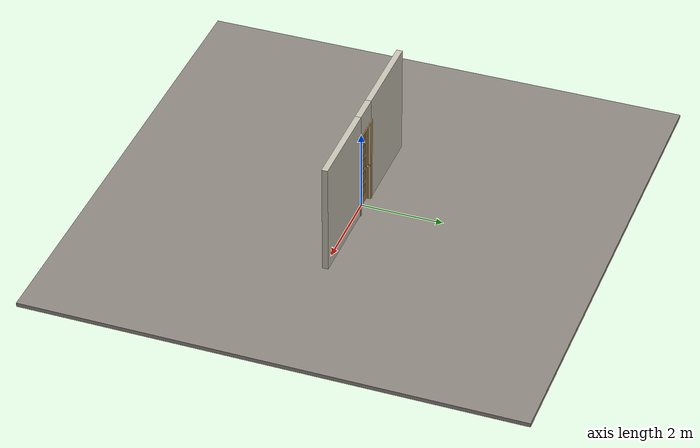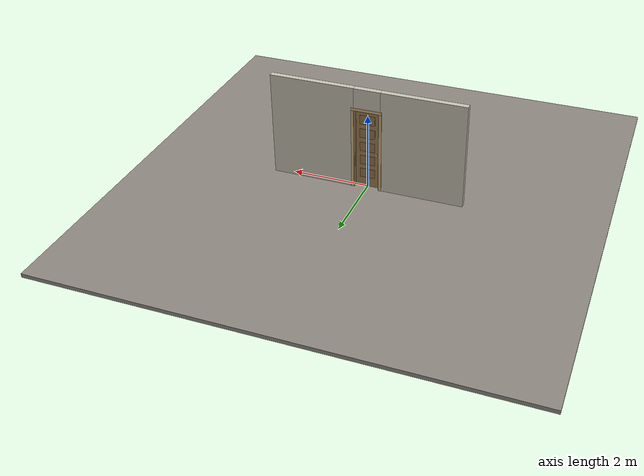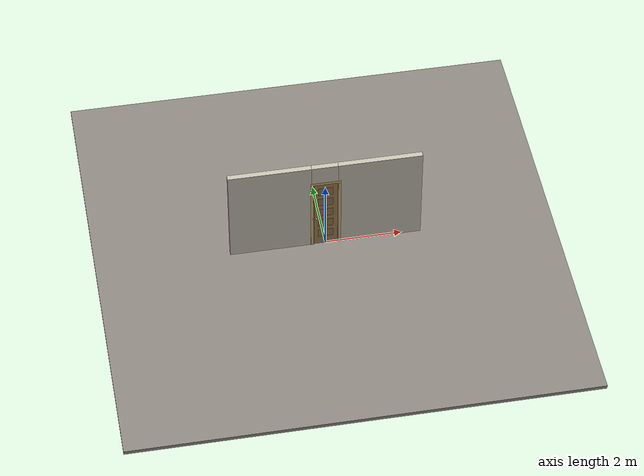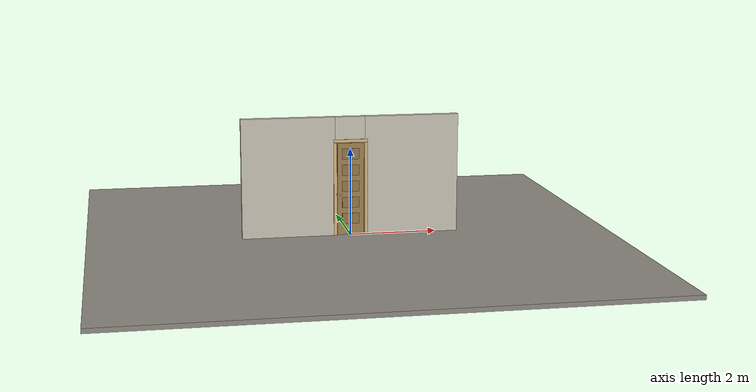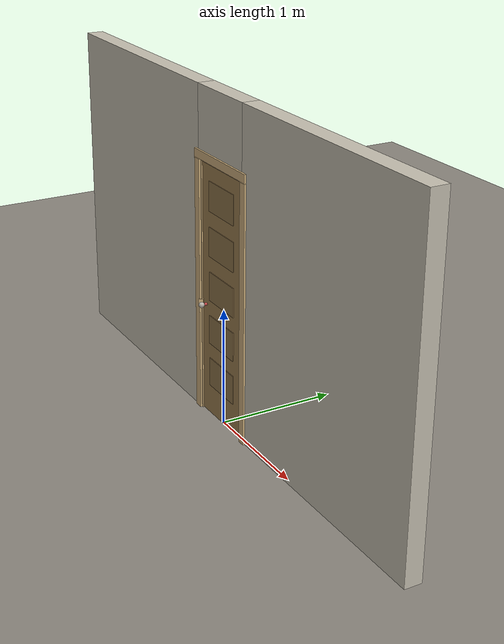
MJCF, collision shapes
<?xml version="1.0" ?>
<mujoco model="db0723_swing_single_full">
  <compiler angle="radian" meshdir="../../hardware" texturedir="../../textures" autolimits="true" inertiafromgeom="false"/>
  <option timestep="0.002" integrator="implicitfast" cone="elliptic" impratio="10" noslip_iterations="3">
    <flag multiccd="enable"/>
  </option>
  <size memory="16M"/>
  <default>
    <geom condim="4" solref="0.005 1" solimp="0.95 0.99 0.001"/>
    <joint solreflimit="0.005 1" solimplimit="0.95 0.99 0.001"/>
    <tendon solreflimit="0.005 1"/>
    <equality solref="0.002 1"/>
  </default>
  <visual>
    <headlight ambient="0.4 0.4 0.4" diffuse="0.7 0.7 0.7" specular="0.2 0.2 0.2"/>
    <quality shadowsize="4096"/>
    <map znear="0.01" zfar="60"/>
  </visual>
  <asset>
    <mesh name="hinge_2af0f4d6ca" file="hinge_2af0f4d6ca.obj"/>
    <mesh name="hinge_jamb_c0c0a62ada" file="hinge_jamb_c0c0a62ada.obj"/>
    <mesh name="knob_248d825e64" file="knob_248d825e64.obj"/>
    <mesh name="knob_d1888f6f03" file="knob_d1888f6f03.obj"/>
    <material name="mat_floor" rgba="0.55 0.53 0.5 1" specular="0.2" shininess="0.15" reflectance="0"/>
    <material name="mat_wall" rgba="0.78 0.76 0.7 1" specular="0.2" shininess="0.1" reflectance="0"/>
    <material name="mat_leaf" rgba="0.615 0.497 0.311 1" specular="0.2" shininess="0.5" reflectance="0"/>
    <material name="mat_leaf_panel" rgba="0.566 0.457 0.287 1" specular="0.2" shininess="0.5" reflectance="0"/>
    <material name="mat_hinge" rgba="0.65 0.66 0.68 1" specular="0.74" shininess="0.5" reflectance="0.36"/>
    <material name="mat_op_nickel_satin" rgba="0.72 0.7 0.66 1" specular="0.8" shininess="0.65" reflectance="0.4"/>
    <material name="mat_trim" rgba="0.85 0.66 0.3 1" specular="0.8" shininess="0.75" reflectance="0.4"/>
    <material name="mat_bolt" rgba="0.85 0.66 0.3 1" specular="0.8" shininess="0.75" reflectance="0.4"/>
    <material name="mat_frame" rgba="0.82 0.7 0.5 1" specular="0.2" shininess="0.45" reflectance="0"/>
    <material name="mat_seal" rgba="0.1 0.1 0.1 1" specular="0.2" shininess="0.1" reflectance="0"/>
    <texture name="skybox" type="skybox" builtin="gradient" rgb1="0.6 0.7 0.85" rgb2="0.9 0.92 0.95" width="256" height="256"/>
  </asset>
  <worldbody>
    <light name="sun" pos="1.5 -2.5 4" dir="-0.3 0.5 -0.8" directional="true" diffuse="0.8 0.8 0.8" specular="0.3 0.3 0.3" castshadow="true"/>
    <light name="fill" pos="-1.5 2.5 3" dir="0.3 -0.5 -0.7" directional="true" diffuse="0.35 0.35 0.4" castshadow="false"/>
    <camera name="robot_view" pos="0 -2.594313 1.812087" xyaxes="1 0 0 0 0.26963 0.962964" fovy="52"/>
    <camera name="far_view" pos="0 2.681312 1.812087" xyaxes="-1 0 0 0 -0.26963 0.962964" fovy="52"/>
    <camera name="iso" pos="-2.004737 -2.172262 2.234138" xyaxes="0.741536 -0.670913 0 0.242917 0.268487 0.932151" fovy="46"/>
    <camera name="detail_handle" pos="-0.064 -0.8685 1.245" xyaxes="0.97561 0.219512 0 -0.070934 0.315262 0.94635" fovy="38"/>
    <geom name="floor" type="box" size="6 6 0.05" pos="0 0 -0.05" material="mat_floor" group="0" contype="1" conaffinity="1" friction="0.8 0.005 0.0001" density="2400"/>
    <geom name="wall_left" type="box" size="1.071 0.0725 1.3735" pos="-1.429 0.0435 1.3735" material="mat_wall" group="0" contype="1" conaffinity="1" friction="0.6 0.005 0.0001" density="800"/>
    <geom name="wall_right" type="box" size="1.086 0.0725 1.3735" pos="1.414 0.0435 1.3735" material="mat_wall" group="0" contype="1" conaffinity="1" friction="0.6 0.005 0.0001" density="800"/>
    <geom name="wall_header" type="box" size="0.343 0.0725 0.2755" pos="-0.015 0.0435 2.4715" material="mat_wall" group="0" contype="1" conaffinity="1" friction="0.6 0.005 0.0001" density="800"/>
    <geom name="hinge_0_jamb" type="mesh" mesh="hinge_jamb_c0c0a62ada" pos="0.306 -0.029 0.259" quat="0 0 1 0" material="mat_hinge" group="1" contype="0" conaffinity="0" density="7850"/>
    <geom name="hinge_1_jamb" type="mesh" mesh="hinge_jamb_c0c0a62ada" pos="0.306 -0.029 1.076" quat="0 0 1 0" material="mat_hinge" group="1" contype="0" conaffinity="0" density="7850"/>
    <geom name="hinge_2_jamb" type="mesh" mesh="hinge_jamb_c0c0a62ada" pos="0.306 -0.029 1.963" quat="0 0 1 0" material="mat_hinge" group="1" contype="0" conaffinity="0" density="7850"/>
    <geom name="jamb_hinge" type="box" size="0.0095 0.0725 1.0735" pos="0.3185 0.0435 1.0735" material="mat_frame" group="0" contype="1" conaffinity="1" friction="0.6 0.005 0.0001" density="400"/>
    <geom name="strike_965_wall_n" type="box" size="0.0245 0.054075 0.0167" pos="-0.3335 0.061925 0.965" material="mat_frame" group="0" contype="1" conaffinity="1" friction="0.6 0.005 0.0001" density="400"/>
    <geom name="strike_965_wall_p" type="box" size="0.0245 0.008 0.0167" pos="-0.3335 -0.01585 0.965" material="mat_frame" group="0" contype="1" conaffinity="1" friction="0.6 0.005 0.0001" density="400"/>
    <geom name="strike_965_ramp" type="box" size="0.0245 0.01649 0.0167" pos="-0.338136 -0.028673 0.965" quat="0.977148 0 0 -0.212558" material="mat_frame" group="0" contype="1" conaffinity="1" friction="0.12 0.005 0.0001" density="400"/>
    <geom name="strike_965_back" type="box" size="0.01615 0.00785 0.0167" pos="-0.34185 0 0.965" material="mat_frame" group="0" contype="1" conaffinity="1" friction="0.6 0.005 0.0001" density="400"/>
    <geom name="jamb_strike_0" type="box" size="0.0245 0.0725 0.47415" pos="-0.3335 0.0435 0.47415" material="mat_frame" group="0" contype="1" conaffinity="1" friction="0.6 0.005 0.0001" density="400"/>
    <geom name="jamb_strike_1" type="box" size="0.0245 0.0725 0.58265" pos="-0.3335 0.0435 1.56435" material="mat_frame" group="0" contype="1" conaffinity="1" friction="0.6 0.005 0.0001" density="400"/>
    <geom name="jamb_head" type="box" size="0.343 0.0725 0.0095" pos="-0.015 0.0435 2.1565" material="mat_frame" group="0" contype="1" conaffinity="1" friction="0.6 0.005 0.0001" density="400"/>
    <geom name="head_stud" type="box" size="0.343 0.0725 0.015" pos="-0.015 0.0435 2.181" material="mat_wall" group="0" contype="1" conaffinity="1" friction="0.6 0.005 0.0001" density="500"/>
    <geom name="stop_hinge" type="box" size="0.0055 0.016 1.0735" pos="0.3035 0.0385 1.0735" material="mat_frame" group="0" contype="1" conaffinity="1" friction="0.6 0.005 0.0001" density="400"/>
    <geom name="stop_strike" type="box" size="0.0055 0.016 1.0735" pos="-0.3035 0.0385 1.0735" material="mat_frame" group="0" contype="1" conaffinity="1" friction="0.6 0.005 0.0001" density="400"/>
    <geom name="stop_head" type="box" size="0.309 0.016 0.0055" pos="0 0.0385 2.1415" material="mat_frame" group="0" contype="1" conaffinity="1" friction="0.6 0.005 0.0001" density="400"/>
    <geom name="seal_hinge" type="box" size="0.004 0.0015 1.0735" pos="0.306 0.0235 1.0735" material="mat_seal" group="1" contype="0" conaffinity="0" density="1100"/>
    <geom name="seal_strike" type="box" size="0.004 0.0015 1.0735" pos="-0.306 0.0235 1.0735" material="mat_seal" group="1" contype="0" conaffinity="0" density="1100"/>
    <geom name="seal_head" type="box" size="0.289 0.0015 0.008" pos="0 0.0235 2.135" material="mat_seal" group="1" contype="0" conaffinity="0" density="1100"/>
    <geom name="casing_l_n" type="box" size="0.035 0.008 1.083" pos="-0.358 -0.037 1.0735" material="mat_frame" group="2" contype="0" conaffinity="0" density="400"/>
    <geom name="casing_r_n" type="box" size="0.035 0.008 1.083" pos="0.358 -0.037 1.0735" material="mat_frame" group="2" contype="0" conaffinity="0" density="400"/>
    <geom name="casing_h_n" type="box" size="0.393 0.008 0.035" pos="0 -0.037 2.196" material="mat_frame" group="2" contype="0" conaffinity="0" density="400"/>
    <geom name="casing_l_p" type="box" size="0.035 0.008 1.083" pos="-0.358 0.124 1.0735" material="mat_frame" group="2" contype="0" conaffinity="0" density="400"/>
    <geom name="casing_r_p" type="box" size="0.035 0.008 1.083" pos="0.358 0.124 1.0735" material="mat_frame" group="2" contype="0" conaffinity="0" density="400"/>
    <geom name="casing_h_p" type="box" size="0.393 0.008 0.035" pos="0 0.124 2.196" material="mat_frame" group="2" contype="0" conaffinity="0" density="400"/>
    <site name="approach_point" pos="0 -1.5 0" quat="1 0 0 0" size="0.05" rgba="0.2 0.9 0.2 0.5" group="4"/>
    <site name="goal_point" pos="0 1.5 0" quat="1 0 0 0" size="0.05" rgba="0.2 0.9 0.2 0.5" group="4"/>
    <site name="door_plane_center" pos="0 0 1.0735" quat="1 0 0 0" size="0.02" rgba="0.2 0.9 0.2 0.5" group="4"/>
    <body name="leaf" pos="0.309 0 0">
      <inertial pos="-0.304617 -0.000177 1.076238" mass="40.237521" quat="0.500359 -0.49951 0.500485 0.499646" diaginertia="1.283248437 15.319782669 16.589750752"/>
      <joint name="leaf_hinge" type="hinge" axis="0 0 1" pos="-0.003 -0.029 0" limited="true" range="0 2.268928" solreflimit="0.02 1" damping="0.103362" frictionloss="0.886739" armature="0.02"/>
      <geom name="leaf_slab" type="box" size="0.305 0.022 1.067" pos="-0.308 0 1.076" material="mat_leaf" group="0" contype="1" conaffinity="1" friction="0.35 0.005 0.0001" density="1"/>
      <geom name="leaf_panel_0_n" type="box" size="0.195 0.003 0.123256" pos="-0.308 -0.025 0.386996" material="mat_leaf_panel" group="1" contype="0" conaffinity="0" density="1"/>
      <geom name="leaf_panel_0_p" type="box" size="0.195 0.003 0.123256" pos="-0.308 0.025 0.386996" material="mat_leaf_panel" group="1" contype="0" conaffinity="0" density="1"/>
      <geom name="leaf_panel_1_n" type="box" size="0.195 0.003 0.123256" pos="-0.308 -0.025 0.763508" material="mat_leaf_panel" group="1" contype="0" conaffinity="0" density="1"/>
      <geom name="leaf_panel_1_p" type="box" size="0.195 0.003 0.123256" pos="-0.308 0.025 0.763508" material="mat_leaf_panel" group="1" contype="0" conaffinity="0" density="1"/>
      <geom name="leaf_panel_2_n" type="box" size="0.195 0.003 0.123256" pos="-0.308 -0.025 1.14002" material="mat_leaf_panel" group="1" contype="0" conaffinity="0" density="1"/>
      <geom name="leaf_panel_2_p" type="box" size="0.195 0.003 0.123256" pos="-0.308 0.025 1.14002" material="mat_leaf_panel" group="1" contype="0" conaffinity="0" density="1"/>
      <geom name="leaf_panel_3_n" type="box" size="0.195 0.003 0.123256" pos="-0.308 -0.025 1.516532" material="mat_leaf_panel" group="1" contype="0" conaffinity="0" density="1"/>
      <geom name="leaf_panel_3_p" type="box" size="0.195 0.003 0.123256" pos="-0.308 0.025 1.516532" material="mat_leaf_panel" group="1" contype="0" conaffinity="0" density="1"/>
      <geom name="leaf_panel_4_n" type="box" size="0.195 0.003 0.123256" pos="-0.308 -0.025 1.893044" material="mat_leaf_panel" group="1" contype="0" conaffinity="0" density="1"/>
      <geom name="leaf_panel_4_p" type="box" size="0.195 0.003 0.123256" pos="-0.308 0.025 1.893044" material="mat_leaf_panel" group="1" contype="0" conaffinity="0" density="1"/>
      <geom name="hinge_0" type="mesh" mesh="hinge_2af0f4d6ca" pos="-0.003 -0.029 0.259" quat="0 0 1 0" material="mat_hinge" group="1" contype="0" conaffinity="0" density="7850"/>
      <geom name="hinge_1" type="mesh" mesh="hinge_2af0f4d6ca" pos="-0.003 -0.029 1.076" quat="0 0 1 0" material="mat_hinge" group="1" contype="0" conaffinity="0" density="7850"/>
      <geom name="hinge_2" type="mesh" mesh="hinge_2af0f4d6ca" pos="-0.003 -0.029 1.963" quat="0 0 1 0" material="mat_hinge" group="1" contype="0" conaffinity="0" density="7850"/>
      <geom name="leaf_latch_bolt_faceplate" type="box" size="0.0006 0.01235 0.0267" pos="-0.6124 0 0.965" material="mat_bolt" group="1" contype="0" conaffinity="0" density="8500"/>
      <site name="leaf_edge_mid" pos="-0.613 0 1.067" quat="1 0 0 0" size="0.02" rgba="0.2 0.9 0.2 0.5" group="4"/>
      <body name="leaf_handle" pos="-0.553 0 0.965">
        <inertial pos="0 -0.000225 0" mass="1.154652" quat="0.5 0.5 0.5 0.5" diaginertia="0.000312546 0.004289529 0.004289529"/>
        <joint name="leaf_handle_hinge" type="hinge" axis="0 1 0" limited="true" range="0 0.87" damping="0.143614" frictionloss="0.038" stiffness="0.5" springref="-0.5" armature="0.01"/>
        <geom name="leaf_handle_spindle" type="cylinder" size="0.006 0.03" pos="0 0 0" quat="0.707107 -0.707107 0 0" material="mat_op_nickel_satin" group="1" contype="0" conaffinity="0" density="7850"/>
        <geom name="leaf_handle_knob_n" type="mesh" mesh="knob_248d825e64" pos="0 -0.022 0" quat="0 0 -0.707107 0.707107" material="mat_op_nickel_satin" group="1" contype="0" conaffinity="0" density="3000"/>
        <geom name="leaf_handle_knob_col_n" type="sphere" size="0.0243" pos="0 -0.0685 0" material="mat_op_nickel_satin" group="0" contype="1" conaffinity="1" friction="0.9 0.01 0.0001" density="3000"/>
        <geom name="leaf_handle_knob_neck_n" type="cylinder" size="0.011 0.012" pos="0 -0.034 0" quat="0.707107 -0.707107 0 0" material="mat_op_nickel_satin" group="3" contype="1" conaffinity="1" rgba="0.8 0.3 0.3 0.25" friction="0.6 0.005 0.0001" density="3000"/>
        <geom name="leaf_handle_knob_p" type="mesh" mesh="knob_d1888f6f03" pos="0 0.022 0" quat="0 0 0.707107 0.707107" material="mat_op_nickel_satin" group="1" contype="0" conaffinity="0" density="3000"/>
        <geom name="leaf_handle_knob_col_p" type="sphere" size="0.0243" pos="0 0.0685 0" material="mat_op_nickel_satin" group="0" contype="1" conaffinity="1" friction="0.9 0.01 0.0001" density="3000"/>
        <geom name="leaf_handle_knob_neck_p" type="cylinder" size="0.011 0.012" pos="0 0.034 0" quat="0.707107 -0.707107 0 0" material="mat_op_nickel_satin" group="3" contype="1" conaffinity="1" rgba="0.8 0.3 0.3 0.25" friction="0.6 0.005 0.0001" density="3000"/>
        <site name="leaf_handle_grip_n" pos="0 -0.0685 0" quat="1 0 0 0" size="0.012" rgba="0.2 0.9 0.2 0.5" group="4"/>
        <site name="leaf_handle_grip_p" pos="0 0.0685 0" quat="1 0 0 0" size="0.012" rgba="0.2 0.9 0.2 0.5" group="4"/>
      </body>
      <body name="leaf_latch_bolt" pos="-0.613 0 0.965">
        <inertial pos="0.00865 0 0" mass="0.041419" quat="0.92388 0.382683 0 0" diaginertia="0.000000798 0.000005598 0.000005598"/>
        <joint name="leaf_latch_bolt_slide" type="slide" axis="1 0 0" limited="true" range="0 0.0127" damping="2" frictionloss="0.3" stiffness="300" springref="-0.008333" armature="0.1"/>
        <geom name="leaf_latch_bolt_capsule" type="capsule" size="0.00635 0.015" pos="0.00865 0 0" quat="0.707107 0 -0.707107 0" material="mat_bolt" group="0" contype="1" conaffinity="1" friction="0.2 0.005 0.0001" density="8500"/>
      </body>
    </body>
  </worldbody>
  <tendon>
    <fixed name="leaf_latch_bolt_coupling" limited="true" range="0 10">
      <joint joint="leaf_latch_bolt_slide" coef="1"/>
      <joint joint="leaf_handle_hinge" coef="-0.015679"/>
    </fixed>
  </tendon>
  <sensor>
    <jointpos name="leaf_hinge_pos" joint="leaf_hinge"/>
    <jointvel name="leaf_hinge_vel" joint="leaf_hinge"/>
    <jointpos name="leaf_handle_hinge_pos" joint="leaf_handle_hinge"/>
    <jointvel name="leaf_handle_hinge_vel" joint="leaf_handle_hinge"/>
    <jointpos name="leaf_latch_bolt_slide_pos" joint="leaf_latch_bolt_slide"/>
    <jointvel name="leaf_latch_bolt_slide_vel" joint="leaf_latch_bolt_slide"/>
  </sensor>
</mujoco>
